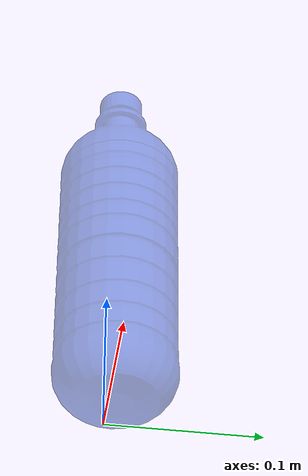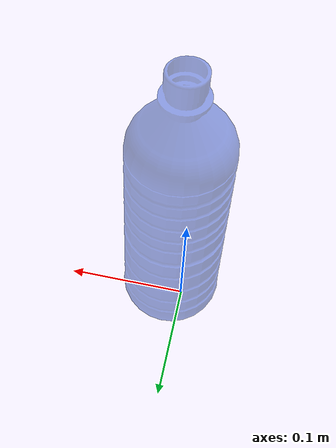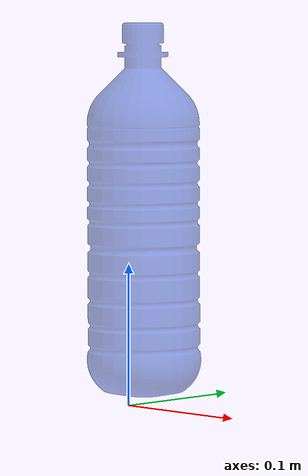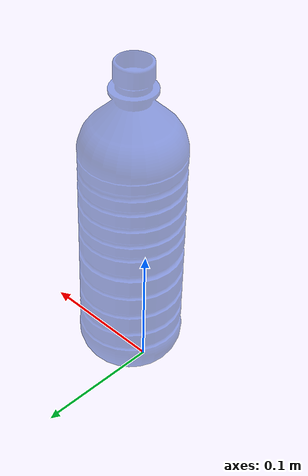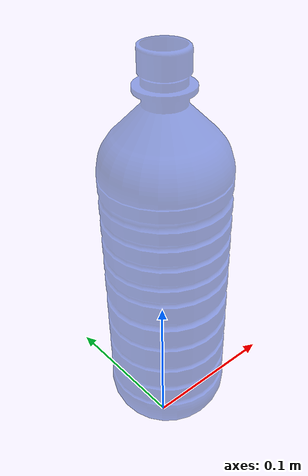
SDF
<?xml version='1.0'?>
<sdf version="1.4">
  <model name="bottle">
    <pose>0 0 0 0 0 0</pose>
    <static>false</static>
    <link name="link">
      <inertial>
        <pose>0.006 0.0065 0.06 0 0 0</pose>
        <mass>0.29</mass>
        <inertia> <!-- inertias are computed considering the bottle as a cylinder with the dimension of the water "cylinder" when the bottle is standing -->
          <ixx>0.000503</ixx>
          <ixy>0.0</ixy>
          <ixz>0.0</ixz>
          <iyy>0.000503</iyy>
          <iyz>0.0</iyz>
          <izz>0.000522</izz>
        </inertia>
      </inertial>
      <collision name="collision">
        <pose>-0.48 0 0 0 0 0</pose>
        <geometry>
          <mesh>
            <uri>/root/tiago_public_ws/src/tiago_pouring/models/bottle1_empty/meshes/model.dae</uri>
            <scale>0.0254 0.0254 0.0254</scale>
          </mesh>
        </geometry>
        <surface>
          <contact>
            <!-- typical acrylic plastic material properties -->
            <poissons_ratio>0.35</poissons_ratio>
            <elastic_modulus>3.102640776e+09</elastic_modulus>
            <ode>
              <kp>100000</kp>
              <kd>100</kd>
              <max_vel>100.0</max_vel>
              <min_depth>0.001</min_depth>
            </ode>
          </contact>
          <friction>
            <torsional>
              <coefficient>1.0</coefficient>
              <use_patch_radius>0</use_patch_radius>
              <surface_radius>0.01</surface_radius>
            </torsional>
          </friction>
        </surface>
      </collision>

      <visual name="visual">
        <pose>-0.48 0 0 0 0 0</pose>
        <geometry>
          <mesh>
            <uri>/root/tiago_public_ws/src/tiago_pouring/models/bottle1_empty/meshes/model.dae</uri>
            <scale>0.0254 0.0254 0.0254</scale>
          </mesh>
        </geometry>
        <material>
          <script>
            <uri>file://media/materials/scripts/gazebo.material</uri>
            <name>Gazebo/BlueTransparent</name>
          </script>
        </material>
      </visual>

    </link>
  </model>
</sdf>
